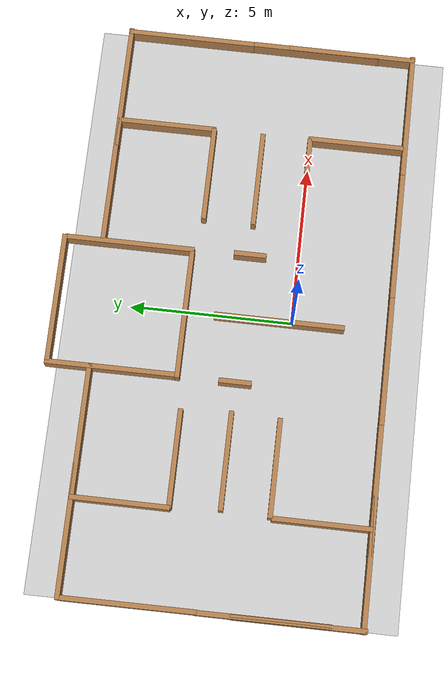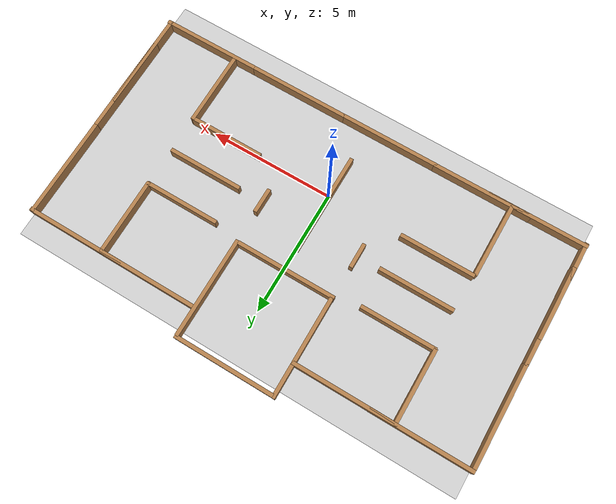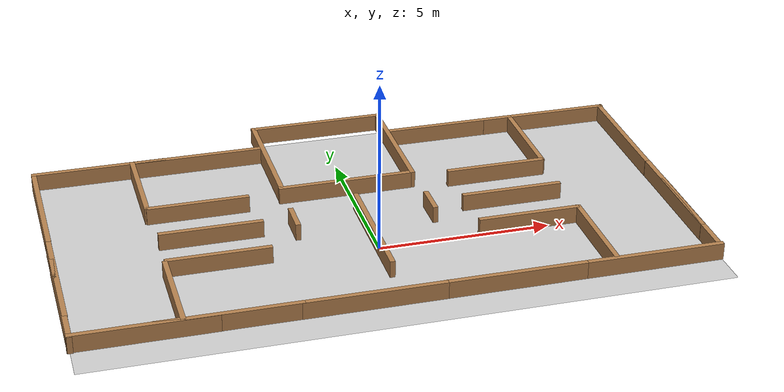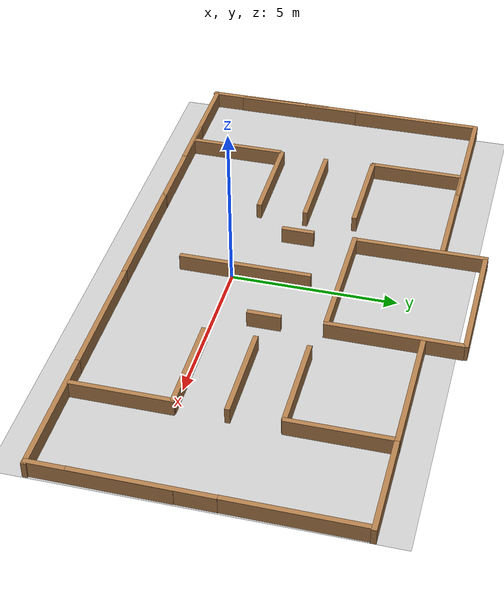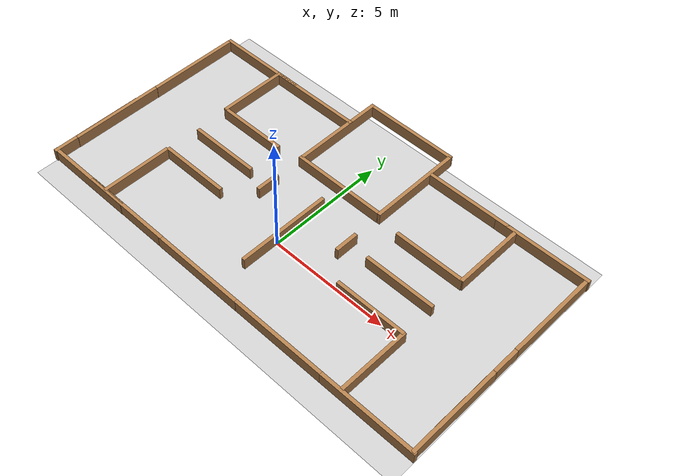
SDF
<sdf version="1.7">
 <world name="default">
  <light name="sun" type="directional">
   <pose>0 0 10 0 -0 0</pose>
   <diffuse>0.8 0.8 0.8 1</diffuse>
   <specular>0.2 0.2 0.2 1</specular>
   <attenuation>
    <range>1000</range>
    <constant>0.9</constant>
    <linear>0.01</linear>
    <quadratic>0.001</quadratic>
   </attenuation>
   <direction>-0.5 0.1 -0.9</direction>
   <spot><inner_angle>0</inner_angle><outer_angle>0</outer_angle><falloff>0</falloff></spot>
  </light>
  <physics name="default_physics" default="0" type="ode">
   <real_time_update_rate>1000</real_time_update_rate>
   <max_step_size>0.001</max_step_size>
   <real_time_factor>1</real_time_factor>
   <ode>
    <solver>
     <type>quick</type>
     <iters>150</iters>
     <precon_iters>0</precon_iters>
     <sor>1.4</sor>
     <use_dynamic_moi_rescaling>1</use_dynamic_moi_rescaling>
    </solver>
    <constraints>
     <cfm>1e-05</cfm>
     <erp>0.2</erp>
     <contact_max_correcting_vel>2000</contact_max_correcting_vel>
     <contact_surface_layer>0.01</contact_surface_layer>
    </constraints>
   </ode>
  </physics>
  <scene><ambient>0.4 0.4 0.4 1</ambient><background>0.7 0.7 0.7 1</background><shadows>1</shadows></scene>
  <gravity>0 0 -9.8</gravity>
  <magnetic_field>6e-06 2.3e-05 -4.2e-05</magnetic_field>
  <atmosphere type="adiabatic"/>
  <audio><device>default</device></audio>
  <spherical_coordinates>
   <surface_model>EARTH_WGS84</surface_model>
   <latitude_deg>0</latitude_deg>
   <longitude_deg>0</longitude_deg>
   <elevation>0</elevation>
   <heading_deg>0</heading_deg>
  </spherical_coordinates>
  <model name="turtlebot3_square">
   <pose>-0.133172 5.32272 0 0 -0 1.57223</pose>
   <link name="Wall_0">
    <collision name="Wall_0_Collision">
     <geometry><box><size>4 0.15 0.5</size></box></geometry>
     <pose>0 0 0.25 0 -0 0</pose>
    </collision>
    <visual name="Wall_0_Visual">
     <pose>0 0 0.25 0 -0 0</pose>
     <geometry><box><size>4 0.15 0.5</size></box></geometry>
     <material>
      <script><uri>file://media/materials/scripts/gazebo.material</uri><name>Gazebo/Wood</name></script>
      <ambient>1 1 1 1</ambient>
     </material>
    </visual>
    <pose>0 1.925 0 0 -0 0</pose>
   </link>
   <static>1</static>
  </model>
  <model name="turtlebot3_square_clone">
   <pose>-7.03636 3.89737 0 0 -0 1.57456</pose>
   <link name="Wall_0">
    <collision name="Wall_0_Collision">
     <geometry><box><size>4 0.15 0.5</size></box></geometry>
     <pose>0 0 0.25 0 -0 0</pose>
    </collision>
    <visual name="Wall_0_Visual">
     <pose>0 0 0.25 0 -0 0</pose>
     <geometry><box><size>4 0.15 0.5</size></box></geometry>
     <material>
      <script><uri>file://media/materials/scripts/gazebo.material</uri><name>Gazebo/Wood</name></script>
      <ambient>1 1 1 1</ambient>
     </material>
    </visual>
    <pose>0 1.925 0 0 -0 0</pose>
   </link>
   <static>1</static>
  </model>
  <model name="turtlebot3_square_clone_0">
   <pose>-3.99799 4.02216 0 0 -0 0</pose>
   <link name="Wall_0">
    <collision name="Wall_0_Collision">
     <geometry><box><size>4 0.15 0.5</size></box></geometry>
     <pose>0 0 0.25 0 -0 0</pose>
    </collision>
    <visual name="Wall_0_Visual">
     <pose>0 0 0.25 0 -0 0</pose>
     <geometry><box><size>4 0.15 0.5</size></box></geometry>
     <material>
      <script><uri>file://media/materials/scripts/gazebo.material</uri><name>Gazebo/Wood</name></script>
      <ambient>1 1 1 1</ambient>
     </material>
    </visual>
    <pose>0 1.925 0 0 -0 0</pose>
   </link>
   <static>1</static>
  </model>
  <model name="turtlebot3_square_clone_1">
   <pose>-0.141512 1.35633 0 0 -0 0</pose>
   <link name="Wall_0">
    <collision name="Wall_0_Collision">
     <geometry><box><size>4 0.15 0.5</size></box></geometry>
     <pose>0 0 0.25 0 -0 0</pose>
    </collision>
    <visual name="Wall_0_Visual">
     <pose>0 0 0.25 0 -0 0</pose>
     <geometry><box><size>4 0.15 0.5</size></box></geometry>
     <material>
      <script><uri>file://media/materials/scripts/gazebo.material</uri><name>Gazebo/Wood</name></script>
      <ambient>1 1 1 1</ambient>
     </material>
    </visual>
    <pose>0 1.925 0 0 -0 0</pose>
   </link>
   <static>1</static>
  </model>
  <model name="turtlebot3_square_clone_2">
   <pose>3.83567 5.21728 0 0 -0 1.56957</pose>
   <link name="Wall_0">
    <collision name="Wall_0_Collision">
     <geometry><box><size>4 0.15 0.5</size></box></geometry>
     <pose>0 0 0.25 0 -0 0</pose>
    </collision>
    <visual name="Wall_0_Visual">
     <pose>0 0 0.25 0 -0 0</pose>
     <geometry><box><size>4 0.15 0.5</size></box></geometry>
     <material>
      <script><uri>file://media/materials/scripts/gazebo.material</uri><name>Gazebo/Wood</name></script>
      <ambient>1 1 1 1</ambient>
     </material>
    </visual>
    <pose>0 1.925 0 0 -0 0</pose>
   </link>
   <static>1</static>
  </model>
  <model name="turtlebot3_square_clone_3">
   <pose>10.8601 4.10334 0 0 -0 1.56595</pose>
   <link name="Wall_0">
    <collision name="Wall_0_Collision">
     <geometry><box><size>4 0.15 0.5</size></box></geometry>
     <pose>0 0 0.25 0 -0 0</pose>
    </collision>
    <visual name="Wall_0_Visual">
     <pose>0 0 0.25 0 -0 0</pose>
     <geometry><box><size>4 0.15 0.5</size></box></geometry>
     <material>
      <script><uri>file://media/materials/scripts/gazebo.material</uri><name>Gazebo/Wood</name></script>
      <ambient>1 1 1 1</ambient>
     </material>
    </visual>
    <pose>0 1.925 0 0 -0 0</pose>
   </link>
   <static>1</static>
  </model>
  <model name="turtlebot3_square_clone_4">
   <pose>-0.908724 -4.8909 0 0 -0 0</pose>
   <link name="Wall_0">
    <collision name="Wall_0_Collision">
     <geometry><box><size>4 0.15 0.5</size></box></geometry>
     <pose>0 0 0.25 0 -0 0</pose>
    </collision>
    <visual name="Wall_0_Visual">
     <pose>0 0 0.25 0 -0 0</pose>
     <geometry><box><size>4 0.15 0.5</size></box></geometry>
     <material>
      <script><uri>file://media/materials/scripts/gazebo.material</uri><name>Gazebo/Wood</name></script>
      <ambient>1 1 1 1</ambient>
     </material>
    </visual>
    <pose>0 1.925 0 0 -0 0</pose>
   </link>
   <static>1</static>
  </model>
  <model name="turtlebot3_square_clone_5">
   <pose>3.04309 -4.88773 0 0 -0 0</pose>
   <link name="Wall_0">
    <collision name="Wall_0_Collision">
     <geometry><box><size>4 0.15 0.5</size></box></geometry>
     <pose>0 0 0.25 0 -0 0</pose>
    </collision>
    <visual name="Wall_0_Visual">
     <pose>0 0 0.25 0 -0 0</pose>
     <geometry><box><size>4 0.15 0.5</size></box></geometry>
     <material>
      <script><uri>file://media/materials/scripts/gazebo.material</uri><name>Gazebo/Wood</name></script>
      <ambient>1 1 1 1</ambient>
     </material>
    </visual>
    <pose>0 1.925 0 0 -0 0</pose>
   </link>
   <static>1</static>
  </model>
  <model name="turtlebot3_square_clone_5_clone">
   <pose>3.96858 4.13887 0 0 -0 0</pose>
   <link name="Wall_0">
    <collision name="Wall_0_Collision">
     <geometry><box><size>4 0.15 0.5</size></box></geometry>
     <pose>0 0 0.25 0 -0 0</pose>
    </collision>
    <visual name="Wall_0_Visual">
     <pose>0 0 0.25 0 -0 0</pose>
     <geometry><box><size>4 0.15 0.5</size></box></geometry>
     <material>
      <script><uri>file://media/materials/scripts/gazebo.material</uri><name>Gazebo/Wood</name></script>
      <ambient>1 1 1 1</ambient>
     </material>
    </visual>
    <pose>0 1.925 0 0 -0 0</pose>
   </link>
   <static>1</static>
  </model>
  <model name="turtlebot3_square_clone_5_clone_clone">
   <pose>7.04908 4.13656 0 0 -0 0</pose>
   <link name="Wall_0">
    <collision name="Wall_0_Collision">
     <geometry><box><size>4 0.15 0.5</size></box></geometry>
     <pose>0 0 0.25 0 -0 0</pose>
    </collision>
    <visual name="Wall_0_Visual">
     <pose>0 0 0.25 0 -0 0</pose>
     <geometry><box><size>4 0.15 0.5</size></box></geometry>
     <material>
      <script><uri>file://media/materials/scripts/gazebo.material</uri><name>Gazebo/Wood</name></script>
      <ambient>1 1 1 1</ambient>
     </material>
    </visual>
    <pose>0 1.925 0 0 -0 0</pose>
   </link>
   <static>1</static>
  </model>
  <model name="turtlebot3_square_clone_3_clone">
   <pose>10.8478 0.108384 0 0 -0 1.56595</pose>
   <link name="Wall_0">
    <collision name="Wall_0_Collision">
     <geometry><box><size>4 0.15 0.5</size></box></geometry>
     <pose>0 0 0.25 0 -0 0</pose>
    </collision>
    <visual name="Wall_0_Visual">
     <pose>0 0 0.25 0 -0 0</pose>
     <geometry><box><size>4 0.15 0.5</size></box></geometry>
     <material>
      <script><uri>file://media/materials/scripts/gazebo.material</uri><name>Gazebo/Wood</name></script>
      <ambient>1 1 1 1</ambient>
     </material>
    </visual>
    <pose>0 1.925 0 0 -0 0</pose>
   </link>
   <static>1</static>
  </model>
  <model name="turtlebot3_square_clone_3_clone_clone">
   <pose>10.8496 -1.02799 0 0 -0 1.56595</pose>
   <link name="Wall_0">
    <collision name="Wall_0_Collision">
     <geometry><box><size>4 0.15 0.5</size></box></geometry>
     <pose>0 0 0.25 0 -0 0</pose>
    </collision>
    <visual name="Wall_0_Visual">
     <pose>0 0 0.25 0 -0 0</pose>
     <geometry><box><size>4 0.15 0.5</size></box></geometry>
     <material>
      <script><uri>file://media/materials/scripts/gazebo.material</uri><name>Gazebo/Wood</name></script>
      <ambient>1 1 1 1</ambient>
     </material>
    </visual>
    <pose>0 1.925 0 0 -0 0</pose>
   </link>
   <static>1</static>
  </model>
  <model name="turtlebot3_square_clone_5_clone_0">
   <pose>7.03427 -4.88867 0 0 -0 0</pose>
   <link name="Wall_0">
    <collision name="Wall_0_Collision">
     <geometry><box><size>4 0.15 0.5</size></box></geometry>
     <pose>0 0 0.25 0 -0 0</pose>
    </collision>
    <visual name="Wall_0_Visual">
     <pose>0 0 0.25 0 -0 0</pose>
     <geometry><box><size>4 0.15 0.5</size></box></geometry>
     <material>
      <script><uri>file://media/materials/scripts/gazebo.material</uri><name>Gazebo/Wood</name></script>
      <ambient>1 1 1 1</ambient>
     </material>
    </visual>
    <pose>0 1.925 0 0 -0 0</pose>
   </link>
   <static>1</static>
  </model>
  <model name="turtlebot3_square_clone_0_clone">
   <pose>-7.03645 4.02741 0 0 -0 0</pose>
   <link name="Wall_0">
    <collision name="Wall_0_Collision">
     <geometry><box><size>4 0.15 0.5</size></box></geometry>
     <pose>0 0 0.25 0 -0 0</pose>
    </collision>
    <visual name="Wall_0_Visual">
     <pose>0 0 0.25 0 -0 0</pose>
     <geometry><box><size>4 0.15 0.5</size></box></geometry>
     <material>
      <script><uri>file://media/materials/scripts/gazebo.material</uri><name>Gazebo/Wood</name></script>
      <ambient>1 1 1 1</ambient>
     </material>
    </visual>
    <pose>0 1.925 0 0 -0 0</pose>
   </link>
   <static>1</static>
  </model>
  <model name="turtlebot3_square_clone_clone">
   <pose>-7.03092 -0.031057 0 0 -0 1.57456</pose>
   <link name="Wall_0">
    <collision name="Wall_0_Collision">
     <geometry><box><size>4 0.15 0.5</size></box></geometry>
     <pose>0 0 0.25 0 -0 0</pose>
    </collision>
    <visual name="Wall_0_Visual">
     <pose>0 0 0.25 0 -0 0</pose>
     <geometry><box><size>4 0.15 0.5</size></box></geometry>
     <material>
      <script><uri>file://media/materials/scripts/gazebo.material</uri><name>Gazebo/Wood</name></script>
      <ambient>1 1 1 1</ambient>
     </material>
    </visual>
    <pose>0 1.925 0 0 -0 0</pose>
   </link>
   <static>1</static>
  </model>
  <model name="turtlebot3_square_clone_4_clone">
   <pose>-4.81406 -4.88662 0 0 -0 0</pose>
   <link name="Wall_0">
    <collision name="Wall_0_Collision">
     <geometry><box><size>4 0.15 0.5</size></box></geometry>
     <pose>0 0 0.25 0 -0 0</pose>
    </collision>
    <visual name="Wall_0_Visual">
     <pose>0 0 0.25 0 -0 0</pose>
     <geometry><box><size>4 0.15 0.5</size></box></geometry>
     <material>
      <script><uri>file://media/materials/scripts/gazebo.material</uri><name>Gazebo/Wood</name></script>
      <ambient>1 1 1 1</ambient>
     </material>
    </visual>
    <pose>0 1.925 0 0 -0 0</pose>
   </link>
   <static>1</static>
  </model>
  <model name="turtlebot3_square_clone_4_clone_0">
   <pose>-7.04339 -4.89537 0 0 -0 0</pose>
   <link name="Wall_0">
    <collision name="Wall_0_Collision">
     <geometry><box><size>4 0.15 0.5</size></box></geometry>
     <pose>0 0 0.25 0 -0 0</pose>
    </collision>
    <visual name="Wall_0_Visual">
     <pose>0 0 0.25 0 -0 0</pose>
     <geometry><box><size>4 0.15 0.5</size></box></geometry>
     <material>
      <script><uri>file://media/materials/scripts/gazebo.material</uri><name>Gazebo/Wood</name></script>
      <ambient>1 1 1 1</ambient>
     </material>
    </visual>
    <pose>0 1.925 0 0 -0 0</pose>
   </link>
   <static>1</static>
  </model>
  <model name="turtlebot3_square_clone_clone_clone">
   <pose>-7.04027 -1.07259 0 0 -0 1.57456</pose>
   <link name="Wall_0">
    <collision name="Wall_0_Collision">
     <geometry><box><size>4 0.15 0.5</size></box></geometry>
     <pose>0 0 0.25 0 -0 0</pose>
    </collision>
    <visual name="Wall_0_Visual">
     <pose>0 0 0.25 0 -0 0</pose>
     <geometry><box><size>4 0.15 0.5</size></box></geometry>
     <material>
      <script><uri>file://media/materials/scripts/gazebo.material</uri><name>Gazebo/Wood</name></script>
      <ambient>1 1 1 1</ambient>
     </material>
    </visual>
    <pose>0 1.925 0 0 -0 0</pose>
   </link>
   <static>1</static>
  </model>
  <model name="turtlebot3_square_clone_1_clone">
   <pose>-0.03017 5.3179 0 0 -0 0</pose>
   <link name="Wall_0">
    <collision name="Wall_0_Collision">
     <geometry><box><size>4 0.15 0.5</size></box></geometry>
     <pose>0 0 0.25 0 -0 0</pose>
    </collision>
    <visual name="Wall_0_Visual">
     <pose>0 0 0.25 0 -0 0</pose>
     <geometry><box><size>4 0.15 0.5</size></box></geometry>
     <material>
      <script><uri>file://media/materials/scripts/gazebo.material</uri><name>Gazebo/Wood</name></script>
      <ambient>1 1 1 1</ambient>
     </material>
    </visual>
    <pose>0 1.925 0 0 -0 0</pose>
   </link>
   <static>1</static>
  </model>
  <model name="turtlebot3_square_clone_2_clone">
   <link name="Wall_0">
    <pose>0 1.925 0 0 -0 0</pose>
    <inertial>
     <mass>1</mass>
     <inertia><ixx>1</ixx><ixy>0</ixy><ixz>0</ixz><iyy>1</iyy><iyz>0</iyz><izz>1</izz></inertia>
    </inertial>
    <visual name="Wall_0_Visual">
     <pose>0 0 0.25 0 -0 0</pose>
     <geometry><box><size>3 0.15 0.5</size></box></geometry>
     <material>
      <script><uri>file://media/materials/scripts/gazebo.material</uri><name>Gazebo/Wood</name></script>
      <ambient>1 1 1 1</ambient>
      <shader type="pixel"><normal_map>__default__</normal_map></shader>
      <diffuse>1 1 1 1</diffuse>
      <specular>0.2 0.2 0.2 1</specular>
      <emissive>0 0 0 1</emissive>
     </material>
    </visual>
    <collision name="Wall_0_Collision">
     <pose>0 0 0.25 0 -0 0</pose>
     <geometry><box><size>3 0.15 0.5</size></box></geometry>
     <surface>
      <friction>
       <ode><mu>1</mu><mu2>1</mu2><fdir1>0 0 0</fdir1><slip1>0</slip1><slip2>0</slip2></ode>
       <torsional>
        <coefficient>1</coefficient>
        <patch_radius>0</patch_radius>
        <surface_radius>0</surface_radius>
        <use_patch_radius>1</use_patch_radius>
        <ode><slip>0</slip></ode>
       </torsional>
      </friction>
      <bounce><restitution_coefficient>0</restitution_coefficient><threshold>1e+06</threshold></bounce>
      <contact>
       <collide_without_contact>0</collide_without_contact>
       <collide_without_contact_bitmask>1</collide_without_contact_bitmask>
       <collide_bitmask>1</collide_bitmask>
       <ode>
        <soft_cfm>0</soft_cfm>
        <soft_erp>0.2</soft_erp>
        <kp>1e+13</kp>
        <kd>1</kd>
        <max_vel>0.01</max_vel>
        <min_depth>0</min_depth>
       </ode>
       <bullet>
        <split_impulse>1</split_impulse>
        <split_impulse_penetration_threshold>-0.01</split_impulse_penetration_threshold>
        <soft_cfm>0</soft_cfm>
        <soft_erp>0.2</soft_erp>
        <kp>1e+13</kp>
        <kd>1</kd>
       </bullet>
      </contact>
     </surface>
    </collision>
   </link>
   <static>1</static>
   <pose>7.83947 -1.42387 0 0 -0 1.56957</pose>
  </model>
  <model name="turtlebot3_square_clone_2_clone_clone">
   <link name="Wall_0">
    <pose>0 1.925 0 0 -0 0</pose>
    <inertial>
     <mass>1</mass>
     <inertia><ixx>1</ixx><ixy>0</ixy><ixz>0</ixz><iyy>1</iyy><iyz>0</iyz><izz>1</izz></inertia>
    </inertial>
    <visual name="Wall_0_Visual">
     <pose>0 0 0.25 0 -0 0</pose>
     <geometry><box><size>3 0.15 0.5</size></box></geometry>
     <material>
      <script><uri>file://media/materials/scripts/gazebo.material</uri><name>Gazebo/Wood</name></script>
      <ambient>1 1 1 1</ambient>
      <shader type="pixel"><normal_map>__default__</normal_map></shader>
      <diffuse>1 1 1 1</diffuse>
      <specular>0.2 0.2 0.2 1</specular>
      <emissive>0 0 0 1</emissive>
     </material>
    </visual>
    <collision name="Wall_0_Collision">
     <pose>0 0 0.25 0 -0 0</pose>
     <geometry><box><size>3 0.15 0.5</size></box></geometry>
     <surface>
      <friction>
       <ode><mu>1</mu><mu2>1</mu2><fdir1>0 0 0</fdir1><slip1>0</slip1><slip2>0</slip2></ode>
       <torsional>
        <coefficient>1</coefficient>
        <patch_radius>0</patch_radius>
        <surface_radius>0</surface_radius>
        <use_patch_radius>1</use_patch_radius>
        <ode><slip>0</slip></ode>
       </torsional>
      </friction>
      <bounce><restitution_coefficient>0</restitution_coefficient><threshold>1e+06</threshold></bounce>
      <contact>
       <collide_without_contact>0</collide_without_contact>
       <collide_without_contact_bitmask>1</collide_without_contact_bitmask>
       <collide_bitmask>1</collide_bitmask>
       <ode>
        <soft_cfm>0</soft_cfm>
        <soft_erp>0.2</soft_erp>
        <kp>1e+13</kp>
        <kd>1</kd>
        <max_vel>0.01</max_vel>
        <min_depth>0</min_depth>
       </ode>
       <bullet>
        <split_impulse>1</split_impulse>
        <split_impulse_penetration_threshold>-0.01</split_impulse_penetration_threshold>
        <soft_cfm>0</soft_cfm>
        <soft_erp>0.2</soft_erp>
        <kp>1e+13</kp>
        <kd>1</kd>
       </bullet>
      </contact>
     </surface>
    </collision>
   </link>
   <static>1</static>
   <pose>7.83405 4.50811 0 0 -0 1.56957</pose>
  </model>
  <model name="turtlebot3_square_clone_2_clone_clone_0">
   <link name="Wall_0">
    <pose>0 1.925 0 0 -0 0</pose>
    <inertial>
     <mass>1</mass>
     <inertia><ixx>1</ixx><ixy>0</ixy><ixz>0</ixz><iyy>1</iyy><iyz>0</iyz><izz>1</izz></inertia>
    </inertial>
    <visual name="Wall_0_Visual">
     <pose>0 0 0.25 0 -0 0</pose>
     <geometry><box><size>3 0.15 0.5</size></box></geometry>
     <material>
      <script><uri>file://media/materials/scripts/gazebo.material</uri><name>Gazebo/Wood</name></script>
      <ambient>1 1 1 1</ambient>
      <shader type="pixel"><normal_map>__default__</normal_map></shader>
      <diffuse>1 1 1 1</diffuse>
      <specular>0.2 0.2 0.2 1</specular>
      <emissive>0 0 0 1</emissive>
     </material>
    </visual>
    <collision name="Wall_0_Collision">
     <pose>0 0 0.25 0 -0 0</pose>
     <geometry><box><size>3 0.15 0.5</size></box></geometry>
     <surface>
      <friction>
       <ode><mu>1</mu><mu2>1</mu2><fdir1>0 0 0</fdir1><slip1>0</slip1><slip2>0</slip2></ode>
       <torsional>
        <coefficient>1</coefficient>
        <patch_radius>0</patch_radius>
        <surface_radius>0</surface_radius>
        <use_patch_radius>1</use_patch_radius>
        <ode><slip>0</slip></ode>
       </torsional>
      </friction>
      <bounce><restitution_coefficient>0</restitution_coefficient><threshold>1e+06</threshold></bounce>
      <contact>
       <collide_without_contact>0</collide_without_contact>
       <collide_without_contact_bitmask>1</collide_without_contact_bitmask>
       <collide_bitmask>1</collide_bitmask>
       <ode>
        <soft_cfm>0</soft_cfm>
        <soft_erp>0.2</soft_erp>
        <kp>1e+13</kp>
        <kd>1</kd>
        <max_vel>0.01</max_vel>
        <min_depth>0</min_depth>
       </ode>
       <bullet>
        <split_impulse>1</split_impulse>
        <split_impulse_penetration_threshold>-0.01</split_impulse_penetration_threshold>
        <soft_cfm>0</soft_cfm>
        <soft_erp>0.2</soft_erp>
        <kp>1e+13</kp>
        <kd>1</kd>
       </bullet>
      </contact>
     </surface>
    </collision>
   </link>
   <static>1</static>
   <pose>-4.11609 4.51473 0 0 -0 1.56957</pose>
  </model>
  <model name="turtlebot3_square_clone_2_clone_clone_1">
   <link name="Wall_0">
    <pose>0 1.925 0 0 -0 0</pose>
    <inertial>
     <mass>1</mass>
     <inertia><ixx>1</ixx><ixy>0</ixy><ixz>0</ixz><iyy>1</iyy><iyz>0</iyz><izz>1</izz></inertia>
    </inertial>
    <visual name="Wall_0_Visual">
     <pose>0 0 0.25 0 -0 0</pose>
     <geometry><box><size>3 0.15 0.5</size></box></geometry>
     <material>
      <script><uri>file://media/materials/scripts/gazebo.material</uri><name>Gazebo/Wood</name></script>
      <ambient>1 1 1 1</ambient>
      <shader type="pixel"><normal_map>__default__</normal_map></shader>
      <diffuse>1 1 1 1</diffuse>
      <specular>0.2 0.2 0.2 1</specular>
      <emissive>0 0 0 1</emissive>
     </material>
    </visual>
    <collision name="Wall_0_Collision">
     <pose>0 0 0.25 0 -0 0</pose>
     <geometry><box><size>3 0.15 0.5</size></box></geometry>
     <surface>
      <friction>
       <ode><mu>1</mu><mu2>1</mu2><fdir1>0 0 0</fdir1><slip1>0</slip1><slip2>0</slip2></ode>
       <torsional>
        <coefficient>1</coefficient>
        <patch_radius>0</patch_radius>
        <surface_radius>0</surface_radius>
        <use_patch_radius>1</use_patch_radius>
        <ode><slip>0</slip></ode>
       </torsional>
      </friction>
      <bounce><restitution_coefficient>0</restitution_coefficient><threshold>1e+06</threshold></bounce>
      <contact>
       <collide_without_contact>0</collide_without_contact>
       <collide_without_contact_bitmask>1</collide_without_contact_bitmask>
       <collide_bitmask>1</collide_bitmask>
       <ode>
        <soft_cfm>0</soft_cfm>
        <soft_erp>0.2</soft_erp>
        <kp>1e+13</kp>
        <kd>1</kd>
        <max_vel>0.01</max_vel>
        <min_depth>0</min_depth>
       </ode>
       <bullet>
        <split_impulse>1</split_impulse>
        <split_impulse_penetration_threshold>-0.01</split_impulse_penetration_threshold>
        <soft_cfm>0</soft_cfm>
        <soft_erp>0.2</soft_erp>
        <kp>1e+13</kp>
        <kd>1</kd>
       </bullet>
      </contact>
     </surface>
    </collision>
   </link>
   <static>1</static>
   <pose>-4.1028 -1.48112 0 0 -0 1.56957</pose>
  </model>
  <model name="turtlebot3_square_clone_2_clone_clone_1_clone_clone">
   <link name="Wall_0">
    <pose>0 1.925 0 0 -0 0</pose>
    <inertial>
     <mass>1</mass>
     <inertia><ixx>1</ixx><ixy>0</ixy><ixz>0</ixz><iyy>1</iyy><iyz>0</iyz><izz>1</izz></inertia>
    </inertial>
    <visual name="Wall_0_Visual">
     <pose>0 0 0.25 0 -0 0</pose>
     <geometry><box><size>3 0.15 0.5</size></box></geometry>
     <material>
      <script><uri>file://media/materials/scripts/gazebo.material</uri><name>Gazebo/Wood</name></script>
      <ambient>1 1 1 1</ambient>
      <shader type="pixel"><normal_map>__default__</normal_map></shader>
      <diffuse>1 1 1 1</diffuse>
      <specular>0.2 0.2 0.2 1</specular>
      <emissive>0 0 0 1</emissive>
     </material>
    </visual>
    <collision name="Wall_0_Collision">
     <pose>0 0 0.25 0 -0 0</pose>
     <geometry><box><size>3 0.15 0.5</size></box></geometry>
     <surface>
      <friction>
       <ode><mu>1</mu><mu2>1</mu2><fdir1>0 0 0</fdir1><slip1>0</slip1><slip2>0</slip2></ode>
       <torsional>
        <coefficient>1</coefficient>
        <patch_radius>0</patch_radius>
        <surface_radius>0</surface_radius>
        <use_patch_radius>1</use_patch_radius>
        <ode><slip>0</slip></ode>
       </torsional>
      </friction>
      <bounce><restitution_coefficient>0</restitution_coefficient><threshold>1e+06</threshold></bounce>
      <contact>
       <collide_without_contact>0</collide_without_contact>
       <collide_without_contact_bitmask>1</collide_without_contact_bitmask>
       <collide_bitmask>1</collide_bitmask>
       <ode>
        <soft_cfm>0</soft_cfm>
        <soft_erp>0.2</soft_erp>
        <kp>1e+13</kp>
        <kd>1</kd>
        <max_vel>0.01</max_vel>
        <min_depth>0</min_depth>
       </ode>
       <bullet>
        <split_impulse>1</split_impulse>
        <split_impulse_penetration_threshold>-0.01</split_impulse_penetration_threshold>
        <soft_cfm>0</soft_cfm>
        <soft_erp>0.2</soft_erp>
        <kp>1e+13</kp>
        <kd>1</kd>
       </bullet>
      </contact>
     </surface>
    </collision>
   </link>
   <static>1</static>
   <pose>-4.57209 1.1277 0 0 -0 0</pose>
  </model>
  <model name="turtlebot3_square_clone_2_clone_clone_1_clone_clone_0">
   <link name="Wall_0">
    <pose>0 1.925 0 0 -0 0</pose>
    <inertial>
     <mass>1</mass>
     <inertia><ixx>1</ixx><ixy>0</ixy><ixz>0</ixz><iyy>1</iyy><iyz>0</iyz><izz>1</izz></inertia>
    </inertial>
    <visual name="Wall_0_Visual">
     <pose>0 0 0.25 0 -0 0</pose>
     <geometry><box><size>3 0.15 0.5</size></box></geometry>
     <material>
      <script><uri>file://media/materials/scripts/gazebo.material</uri><name>Gazebo/Wood</name></script>
      <ambient>1 1 1 1</ambient>
      <shader type="pixel"><normal_map>__default__</normal_map></shader>
      <diffuse>1 1 1 1</diffuse>
      <specular>0.2 0.2 0.2 1</specular>
      <emissive>0 0 0 1</emissive>
     </material>
    </visual>
    <collision name="Wall_0_Collision">
     <pose>0 0 0.25 0 -0 0</pose>
     <geometry><box><size>3 0.15 0.5</size></box></geometry>
     <surface>
      <friction>
       <ode><mu>1</mu><mu2>1</mu2><fdir1>0 0 0</fdir1><slip1>0</slip1><slip2>0</slip2></ode>
       <torsional>
        <coefficient>1</coefficient>
        <patch_radius>0</patch_radius>
        <surface_radius>0</surface_radius>
        <use_patch_radius>1</use_patch_radius>
        <ode><slip>0</slip></ode>
       </torsional>
      </friction>
      <bounce><restitution_coefficient>0</restitution_coefficient><threshold>1e+06</threshold></bounce>
      <contact>
       <collide_without_contact>0</collide_without_contact>
       <collide_without_contact_bitmask>1</collide_without_contact_bitmask>
       <collide_bitmask>1</collide_bitmask>
       <ode>
        <soft_cfm>0</soft_cfm>
        <soft_erp>0.2</soft_erp>
        <kp>1e+13</kp>
        <kd>1</kd>
        <max_vel>0.01</max_vel>
        <min_depth>0</min_depth>
       </ode>
       <bullet>
        <split_impulse>1</split_impulse>
        <split_impulse_penetration_threshold>-0.01</split_impulse_penetration_threshold>
        <soft_cfm>0</soft_cfm>
        <soft_erp>0.2</soft_erp>
        <kp>1e+13</kp>
        <kd>1</kd>
       </bullet>
      </contact>
     </surface>
    </collision>
   </link>
   <static>1</static>
   <pose>-4.53021 -1.87063 0 0 -0 0</pose>
  </model>
  <model name="turtlebot3_square_clone_2_clone_clone_1_clone_clone_1">
   <link name="Wall_0">
    <pose>0 1.925 0 0 -0 0</pose>
    <inertial>
     <mass>1</mass>
     <inertia><ixx>1</ixx><ixy>0</ixy><ixz>0</ixz><iyy>1</iyy><iyz>0</iyz><izz>1</izz></inertia>
    </inertial>
    <visual name="Wall_0_Visual">
     <pose>0 0 0.25 0 -0 0</pose>
     <geometry><box><size>3 0.15 0.5</size></box></geometry>
     <material>
      <script><uri>file://media/materials/scripts/gazebo.material</uri><name>Gazebo/Wood</name></script>
      <ambient>1 1 1 1</ambient>
      <shader type="pixel"><normal_map>__default__</normal_map></shader>
      <diffuse>1 1 1 1</diffuse>
      <specular>0.2 0.2 0.2 1</specular>
      <emissive>0 0 0 1</emissive>
     </material>
    </visual>
    <collision name="Wall_0_Collision">
     <pose>0 0 0.25 0 -0 0</pose>
     <geometry><box><size>3 0.15 0.5</size></box></geometry>
     <surface>
      <friction>
       <ode><mu>1</mu><mu2>1</mu2><fdir1>0 0 0</fdir1><slip1>0</slip1><slip2>0</slip2></ode>
       <torsional>
        <coefficient>1</coefficient>
        <patch_radius>0</patch_radius>
        <surface_radius>0</surface_radius>
        <use_patch_radius>1</use_patch_radius>
        <ode><slip>0</slip></ode>
       </torsional>
      </friction>
      <bounce><restitution_coefficient>0</restitution_coefficient><threshold>1e+06</threshold></bounce>
      <contact>
       <collide_without_contact>0</collide_without_contact>
       <collide_without_contact_bitmask>1</collide_without_contact_bitmask>
       <collide_bitmask>1</collide_bitmask>
       <ode>
        <soft_cfm>0</soft_cfm>
        <soft_erp>0.2</soft_erp>
        <kp>1e+13</kp>
        <kd>1</kd>
        <max_vel>0.01</max_vel>
        <min_depth>0</min_depth>
       </ode>
       <bullet>
        <split_impulse>1</split_impulse>
        <split_impulse_penetration_threshold>-0.01</split_impulse_penetration_threshold>
        <soft_cfm>0</soft_cfm>
        <soft_erp>0.2</soft_erp>
        <kp>1e+13</kp>
        <kd>1</kd>
       </bullet>
      </contact>
     </surface>
    </collision>
   </link>
   <static>1</static>
   <pose>4.42967 -1.90298 0 0 -0 0</pose>
  </model>
  <model name="turtlebot3_square_clone_2_clone_clone_1_clone_clone_2">
   <link name="Wall_0">
    <pose>0 1.925 0 0 -0 0</pose>
    <inertial>
     <mass>1</mass>
     <inertia><ixx>1</ixx><ixy>0</ixy><ixz>0</ixz><iyy>1</iyy><iyz>0</iyz><izz>1</izz></inertia>
    </inertial>
    <visual name="Wall_0_Visual">
     <pose>0 0 0.25 0 -0 0</pose>
     <geometry><box><size>3 0.15 0.5</size></box></geometry>
     <material>
      <script><uri>file://media/materials/scripts/gazebo.material</uri><name>Gazebo/Wood</name></script>
      <ambient>1 1 1 1</ambient>
      <shader type="pixel"><normal_map>__default__</normal_map></shader>
      <diffuse>1 1 1 1</diffuse>
      <specular>0.2 0.2 0.2 1</specular>
      <emissive>0 0 0 1</emissive>
     </material>
    </visual>
    <collision name="Wall_0_Collision">
     <pose>0 0 0.25 0 -0 0</pose>
     <geometry><box><size>3 0.15 0.5</size></box></geometry>
     <surface>
      <friction>
       <ode><mu>1</mu><mu2>1</mu2><fdir1>0 0 0</fdir1><slip1>0</slip1><slip2>0</slip2></ode>
       <torsional>
        <coefficient>1</coefficient>
        <patch_radius>0</patch_radius>
        <surface_radius>0</surface_radius>
        <use_patch_radius>1</use_patch_radius>
        <ode><slip>0</slip></ode>
       </torsional>
      </friction>
      <bounce><restitution_coefficient>0</restitution_coefficient><threshold>1e+06</threshold></bounce>
      <contact>
       <collide_without_contact>0</collide_without_contact>
       <collide_without_contact_bitmask>1</collide_without_contact_bitmask>
       <collide_bitmask>1</collide_bitmask>
       <ode>
        <soft_cfm>0</soft_cfm>
        <soft_erp>0.2</soft_erp>
        <kp>1e+13</kp>
        <kd>1</kd>
        <max_vel>0.01</max_vel>
        <min_depth>0</min_depth>
       </ode>
       <bullet>
        <split_impulse>1</split_impulse>
        <split_impulse_penetration_threshold>-0.01</split_impulse_penetration_threshold>
        <soft_cfm>0</soft_cfm>
        <soft_erp>0.2</soft_erp>
        <kp>1e+13</kp>
        <kd>1</kd>
       </bullet>
      </contact>
     </surface>
    </collision>
   </link>
   <static>1</static>
   <pose>4.43963 1.13089 0 0 -0 0</pose>
  </model>
  <model name="turtlebot3_square_clone_2_clone_clone_1_clone_clone_3">
   <link name="Wall_0">
    <pose>0 1.925 0 0 -0 0</pose>
    <inertial>
     <mass>1</mass>
     <inertia><ixx>1</ixx><ixy>0</ixy><ixz>0</ixz><iyy>1</iyy><iyz>0</iyz><izz>1</izz></inertia>
    </inertial>
    <visual name="Wall_0_Visual">
     <pose>0 0 0.25 0 -0 0</pose>
     <geometry><box><size>3 0.15 0.5</size></box></geometry>
     <material>
      <script><uri>file://media/materials/scripts/gazebo.material</uri><name>Gazebo/Wood</name></script>
      <ambient>1 1 1 1</ambient>
      <shader type="pixel"><normal_map>__default__</normal_map></shader>
      <diffuse>1 1 1 1</diffuse>
      <specular>0.2 0.2 0.2 1</specular>
      <emissive>0 0 0 1</emissive>
     </material>
    </visual>
    <collision name="Wall_0_Collision">
     <pose>0 0 0.25 0 -0 0</pose>
     <geometry><box><size>3 0.15 0.5</size></box></geometry>
     <surface>
      <friction>
       <ode><mu>1</mu><mu2>1</mu2><fdir1>0 0 0</fdir1><slip1>0</slip1><slip2>0</slip2></ode>
       <torsional>
        <coefficient>1</coefficient>
        <patch_radius>0</patch_radius>
        <surface_radius>0</surface_radius>
        <use_patch_radius>1</use_patch_radius>
        <ode><slip>0</slip></ode>
       </torsional>
      </friction>
      <bounce><restitution_coefficient>0</restitution_coefficient><threshold>1e+06</threshold></bounce>
      <contact>
       <collide_without_contact>0</collide_without_contact>
       <collide_without_contact_bitmask>1</collide_without_contact_bitmask>
       <collide_bitmask>1</collide_bitmask>
       <ode>
        <soft_cfm>0</soft_cfm>
        <soft_erp>0.2</soft_erp>
        <kp>1e+13</kp>
        <kd>1</kd>
        <max_vel>0.01</max_vel>
        <min_depth>0</min_depth>
       </ode>
       <bullet>
        <split_impulse>1</split_impulse>
        <split_impulse_penetration_threshold>-0.01</split_impulse_penetration_threshold>
        <soft_cfm>0</soft_cfm>
        <soft_erp>0.2</soft_erp>
        <kp>1e+13</kp>
        <kd>1</kd>
       </bullet>
      </contact>
     </surface>
    </collision>
   </link>
   <static>1</static>
   <pose>4.41679 -0.41247 0 0 -0 0</pose>
  </model>
  <model name="turtlebot3_square_clone_2_clone_0">
   <pose>1.86486 0.395018 0 0 -0 1.56957</pose>
   <link name="Wall_0">
    <collision name="Wall_0_Collision">
     <geometry><box><size>4 0.15 0.5</size></box></geometry>
     <pose>0 0 0.25 0 -0 0</pose>
    </collision>
    <visual name="Wall_0_Visual">
     <pose>0 0 0.25 0 -0 0</pose>
     <geometry><box><size>4 0.15 0.5</size></box></geometry>
     <material>
      <script><uri>file://media/materials/scripts/gazebo.material</uri><name>Gazebo/Wood</name></script>
      <ambient>1 1 1 1</ambient>
     </material>
    </visual>
    <pose>0 1.925 0 0 -0 0</pose>
   </link>
   <static>1</static>
  </model>
  <model name="turtlebot3_square_clone_2_clone_clone_1_clone">
   <link name="Wall_0">
    <pose>0 1.925 0 0 -0 0</pose>
    <inertial>
     <mass>1</mass>
     <inertia><ixx>1</ixx><ixy>0</ixy><ixz>0</ixz><iyy>1</iyy><iyz>0</iyz><izz>1</izz></inertia>
    </inertial>
    <visual name="Wall_0_Visual">
     <pose>0 0 0.25 0 -0 0</pose>
     <geometry><box><size>1 0.15 0.5</size></box></geometry>
     <material>
      <script><uri>file://media/materials/scripts/gazebo.material</uri><name>Gazebo/Wood</name></script>
      <ambient>1 1 1 1</ambient>
      <shader type="pixel"><normal_map>__default__</normal_map></shader>
      <diffuse>1 1 1 1</diffuse>
      <specular>0.2 0.2 0.2 1</specular>
      <emissive>0 0 0 1</emissive>
     </material>
    </visual>
    <collision name="Wall_0_Collision">
     <pose>0 0 0.25 0 -0 0</pose>
     <geometry><box><size>1 0.15 0.5</size></box></geometry>
     <surface>
      <friction>
       <ode><mu>1</mu><mu2>1</mu2><fdir1>0 0 0</fdir1><slip1>0</slip1><slip2>0</slip2></ode>
       <torsional>
        <coefficient>1</coefficient>
        <patch_radius>0</patch_radius>
        <surface_radius>0</surface_radius>
        <use_patch_radius>1</use_patch_radius>
        <ode><slip>0</slip></ode>
       </torsional>
      </friction>
      <bounce><restitution_coefficient>0</restitution_coefficient><threshold>1e+06</threshold></bounce>
      <contact>
       <collide_without_contact>0</collide_without_contact>
       <collide_without_contact_bitmask>1</collide_without_contact_bitmask>
       <collide_bitmask>1</collide_bitmask>
       <ode>
        <soft_cfm>0</soft_cfm>
        <soft_erp>0.2</soft_erp>
        <kp>1e+13</kp>
        <kd>1</kd>
        <max_vel>0.01</max_vel>
        <min_depth>0</min_depth>
       </ode>
       <bullet>
        <split_impulse>1</split_impulse>
        <split_impulse_penetration_threshold>-0.01</split_impulse_penetration_threshold>
        <soft_cfm>0</soft_cfm>
        <soft_erp>0.2</soft_erp>
        <kp>1e+13</kp>
        <kd>1</kd>
       </bullet>
      </contact>
     </surface>
    </collision>
   </link>
   <static>1</static>
   <pose>-0.153451 1.52068 0 0 -0 1.56957</pose>
  </model>
  <model name="turtlebot3_square_clone_2_clone_clone_1_clone_clone_4">
   <link name="Wall_0">
    <pose>0 1.925 0 0 -0 0</pose>
    <inertial>
     <mass>1</mass>
     <inertia><ixx>1</ixx><ixy>0</ixy><ixz>0</ixz><iyy>1</iyy><iyz>0</iyz><izz>1</izz></inertia>
    </inertial>
    <visual name="Wall_0_Visual">
     <pose>0 0 0.25 0 -0 0</pose>
     <geometry><box><size>1 0.15 0.5</size></box></geometry>
     <material>
      <script><uri>file://media/materials/scripts/gazebo.material</uri><name>Gazebo/Wood</name></script>
      <ambient>1 1 1 1</ambient>
      <shader type="pixel"><normal_map>__default__</normal_map></shader>
      <diffuse>1 1 1 1</diffuse>
      <specular>0.2 0.2 0.2 1</specular>
      <emissive>0 0 0 1</emissive>
     </material>
    </visual>
    <collision name="Wall_0_Collision">
     <pose>0 0 0.25 0 -0 0</pose>
     <geometry><box><size>1 0.15 0.5</size></box></geometry>
     <surface>
      <friction>
       <ode><mu>1</mu><mu2>1</mu2><fdir1>0 0 0</fdir1><slip1>0</slip1><slip2>0</slip2></ode>
       <torsional>
        <coefficient>1</coefficient>
        <patch_radius>0</patch_radius>
        <surface_radius>0</surface_radius>
        <use_patch_radius>1</use_patch_radius>
        <ode><slip>0</slip></ode>
       </torsional>
      </friction>
      <bounce><restitution_coefficient>0</restitution_coefficient><threshold>1e+06</threshold></bounce>
      <contact>
       <collide_without_contact>0</collide_without_contact>
       <collide_without_contact_bitmask>1</collide_without_contact_bitmask>
       <collide_bitmask>1</collide_bitmask>
       <ode>
        <soft_cfm>0</soft_cfm>
        <soft_erp>0.2</soft_erp>
        <kp>1e+13</kp>
        <kd>1</kd>
        <max_vel>0.01</max_vel>
        <min_depth>0</min_depth>
       </ode>
       <bullet>
        <split_impulse>1</split_impulse>
        <split_impulse_penetration_threshold>-0.01</split_impulse_penetration_threshold>
        <soft_cfm>0</soft_cfm>
        <soft_erp>0.2</soft_erp>
        <kp>1e+13</kp>
        <kd>1</kd>
       </bullet>
      </contact>
     </surface>
    </collision>
   </link>
   <static>1</static>
   <pose>3.87169 1.49172 0 0 -0 1.56957</pose>
  </model>
  <model name="turtlebot3_square_clone_2_clone_clone_1_clone_clone_3_clone">
   <link name="Wall_0">
    <pose>0 1.925 0 0 -0 0</pose>
    <inertial>
     <mass>1</mass>
     <inertia><ixx>1</ixx><ixy>0</ixy><ixz>0</ixz><iyy>1</iyy><iyz>0</iyz><izz>1</izz></inertia>
    </inertial>
    <visual name="Wall_0_Visual">
     <pose>0 0 0.25 0 -0 0</pose>
     <geometry><box><size>3 0.15 0.5</size></box></geometry>
     <material>
      <script><uri>file://media/materials/scripts/gazebo.material</uri><name>Gazebo/Wood</name></script>
      <ambient>1 1 1 1</ambient>
      <shader type="pixel"><normal_map>__default__</normal_map></shader>
      <diffuse>1 1 1 1</diffuse>
      <specular>0.2 0.2 0.2 1</specular>
      <emissive>0 0 0 1</emissive>
     </material>
    </visual>
    <collision name="Wall_0_Collision">
     <pose>0 0 0.25 0 -0 0</pose>
     <geometry><box><size>3 0.15 0.5</size></box></geometry>
     <surface>
      <friction>
       <ode><mu>1</mu><mu2>1</mu2><fdir1>0 0 0</fdir1><slip1>0</slip1><slip2>0</slip2></ode>
       <torsional>
        <coefficient>1</coefficient>
        <patch_radius>0</patch_radius>
        <surface_radius>0</surface_radius>
        <use_patch_radius>1</use_patch_radius>
        <ode><slip>0</slip></ode>
       </torsional>
      </friction>
      <bounce><restitution_coefficient>0</restitution_coefficient><threshold>1e+06</threshold></bounce>
      <contact>
       <collide_without_contact>0</collide_without_contact>
       <collide_without_contact_bitmask>1</collide_without_contact_bitmask>
       <collide_bitmask>1</collide_bitmask>
       <ode>
        <soft_cfm>0</soft_cfm>
        <soft_erp>0.2</soft_erp>
        <kp>1e+13</kp>
        <kd>1</kd>
        <max_vel>0.01</max_vel>
        <min_depth>0</min_depth>
       </ode>
       <bullet>
        <split_impulse>1</split_impulse>
        <split_impulse_penetration_threshold>-0.01</split_impulse_penetration_threshold>
        <soft_cfm>0</soft_cfm>
        <soft_erp>0.2</soft_erp>
        <kp>1e+13</kp>
        <kd>1</kd>
       </bullet>
      </contact>
     </surface>
    </collision>
   </link>
   <static>1</static>
   <pose>-4.4718 -0.3972 0 0 -0 0</pose>
  </model>
  <model name="football1">
   <static>1</static>
   <link name="link">
    <collision name="collision">
     <geometry><plane><normal>0 0 1</normal><size>18 11</size></plane></geometry>
     <surface><friction><ode><mu>100</mu><mu2>50</mu2></ode></friction></surface>
    </collision>
    <visual name="visual">
     <cast_shadows>0</cast_shadows>
     <geometry><plane><normal>0 0 1</normal><size>18 11</size></plane></geometry>
     <material>
      <script>
       <uri>model://football1/materials/scripts</uri>
       <uri>model://football1/materials/textures</uri>
       <name>football1/Image</name>
      </script>
     </material>
    </visual>
   </link>
   <pose>0.031724 1.5 0 0 -0 0</pose>
  </model>
 </world>
</sdf>
